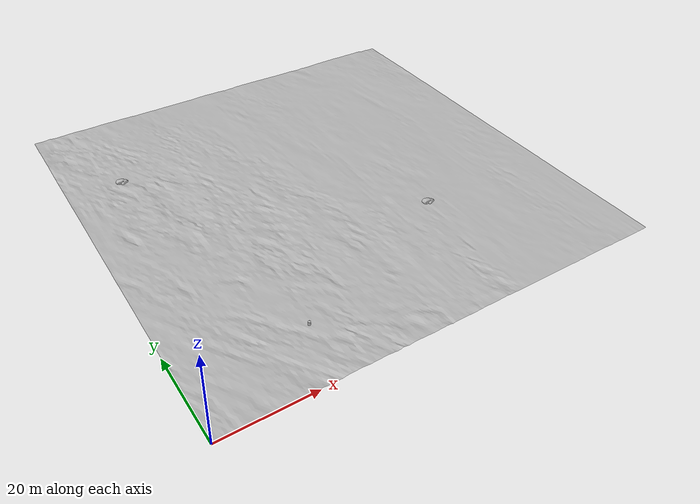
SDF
<sdf version="1.4">
 <world name="default">
  <include><uri>model://sun</uri></include>
  <scene>
   <sky><time>10</time><clouds><speed>5</speed><direction>1.14</direction><humidity>0.3</humidity></clouds></sky>
  </scene>
  <include><uri>model://srvss_terrain1</uri></include>
  <include>
   <uri>model://barrel1</uri>
   <pose>25.5473 13.1754 0.298251 0.0495667 -0.037114 -0.0436132</pose>
   <scale>1.17024 1.17024 1.17024</scale>
   <name>object0</name>
  </include>
  <include>
   <uri>model://rock1</uri>
   <pose>13.2905 72.8294 0.0887239 -0.0427854 -0.0836141 -0.0385041</pose>
   <scale>1.78311 1.78311 1.78311</scale>
   <name>object1</name>
  </include>
  <include>
   <uri>model://rock1</uri>
   <pose>67.0177 30.7837 0.286311 -0.0905632 0.0599333 0.0414693</pose>
   <scale>4.7608 4.7608 4.7608</scale>
   <name>object2</name>
  </include>
 </world>
</sdf>

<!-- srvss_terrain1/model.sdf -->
<sdf version="1.4">
    <model name="terrain">
        <static>true</static>
        <link name="terrain1">
            <pose>0 0 0 0 0 0</pose>
            <collision name="terrain1_collision">
                <geometry>
                    <mesh>
                        <uri>model://srvss_terrain1/meshes/terrain1.dae</uri>
                    </mesh>
                </geometry>
		<surface>
		  <friction>
		    <ode>
		      <mu>100</mu>
		      <mu2>100</mu2>
		    </ode>
		  </friction>
		</surface>
            </collision>
            <visual name="terrain1_visual">
                <geometry>
                    <mesh>
                        <uri>model://srvss_terrain1/meshes/terrain1.dae</uri>
                    </mesh>
                </geometry>
                <material>
                    <script>
                        <uri>model://srvss_terrain1/materials/scripts</uri>
                        <uri>model://srvss_terrain1/materials/textures</uri>
                        <name>terrain/terrain1</name>
                    </script>
                </material>
            </visual>
        </link>
    </model>
</sdf>

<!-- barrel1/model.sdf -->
<sdf version="1.4">
  <model name="barrel1">
    <static>true</static>
    <link name="link">
      <collision name="collision">
        <geometry>
          <mesh>
		<uri>model://barrel1/models/barrel1.dae</uri>
          </mesh>
        </geometry>
      </collision>
      <visual name="visual">
         <geometry>
          <mesh>
		<uri>model://barrel1/models/barrel1.dae</uri>
          </mesh>
        </geometry>
      </visual>
    </link>
  </model>
</sdf>

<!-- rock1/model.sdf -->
<sdf version="1.4">
  <model name="rock1">
    <static>true</static>
    <link name="link">
      <collision name="collision">
        <geometry>
          <mesh>
		<uri>model://rock1/models/rock1.dae</uri>
		<scale>1 1 1</scale>
          </mesh>
        </geometry>
      </collision>
      <visual name="visual">
         <geometry>
          <mesh>
		<uri>model://rock1/models/rock1.dae</uri>
		<scale>1 1 1</scale>
          </mesh>
        </geometry>
      </visual>
    </link>
  </model>
</sdf>
